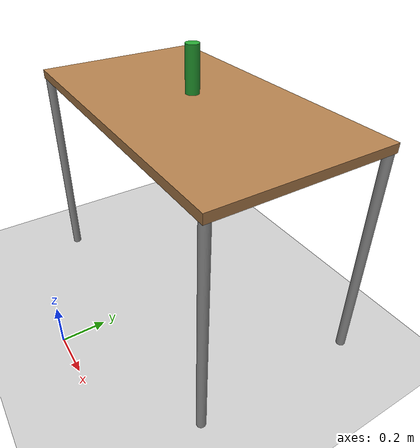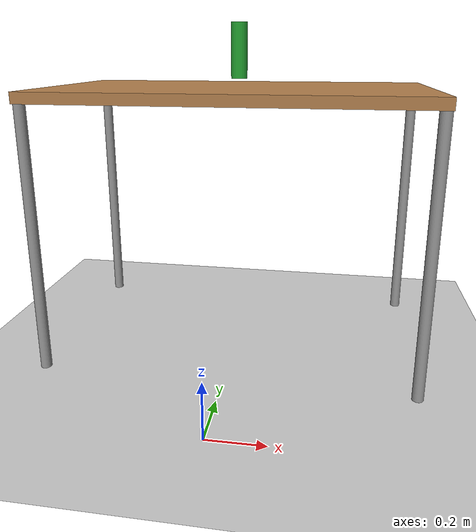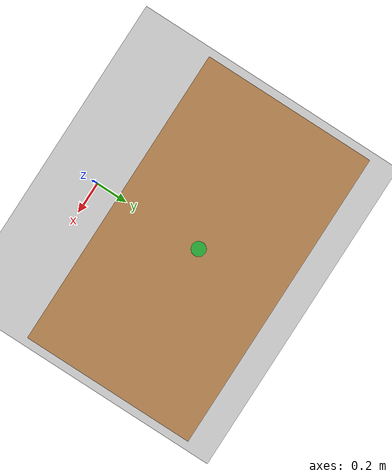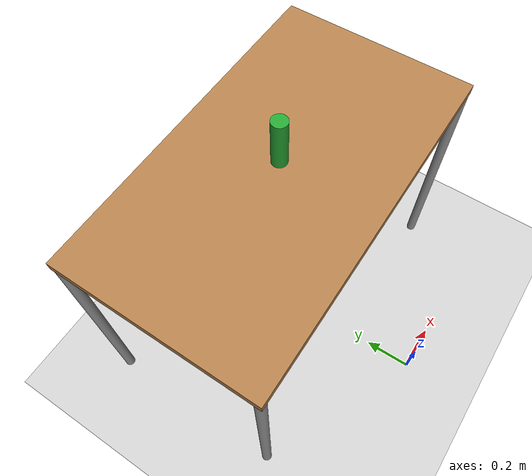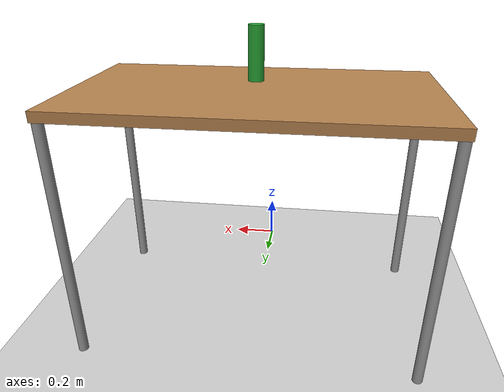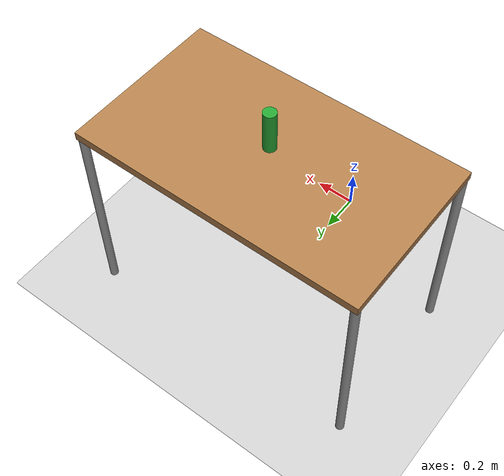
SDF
<?xml version="1.0"?>
<sdf version='1.4'>
  <world name='simple_grasping'>
    <!-- A global light source -->
    <include>
      <uri>model://sun</uri>
    </include>

    <!-- A ground plane -->
    <include>
      <uri>model://ground_plane</uri>
    </include>

    <physics type="ode">
      <real_time_update_rate>1000.0</real_time_update_rate>
      <max_step_size>0.001</max_step_size>
      <real_time_factor>1</real_time_factor>
      <ode>
        <solver>
          <type>quick</type>
          <iters>150</iters>
          <precon_iters>0</precon_iters>
          <sor>1.400000</sor>
          <use_dynamic_moi_rescaling>1</use_dynamic_moi_rescaling>
        </solver>
        <constraints>
          <cfm>0.00001</cfm>
          <erp>0.2</erp>
          <contact_max_correcting_vel>2000.000000</contact_max_correcting_vel>
          <contact_surface_layer>0.01000</contact_surface_layer>
        </constraints>
      </ode>
    </physics>

    <scene>
      <ambient>0.4 0.4 0.4 1</ambient>
      <background>0.7 0.7 0.7 1</background>
      <shadows>false</shadows>
    </scene>

    <gui fullscreen='0'>
      <camera name='user_camera'>
        <pose>4.3 2.3 3.3 0 0.45 -2.8</pose>
        <view_controller>orbit</view_controller>
      </camera>
    </gui>

    <!-- models -->

    <!-- table -->
    <include>
      <pose>0 0.7 0 0 0 0</pose>
      <uri>model://table</uri>
    </include>

    <!-- object to grasp, a cylinder -->
    <include>
      <pose>0 0.7 1.15 0 0 0</pose>
      <uri>model://cylinder</uri>
    </include>

  </world>
</sdf>

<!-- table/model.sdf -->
<sdf version='1.6'>
  <model name='table'>
    <link name='link'>
      <collision name='surface'>
        <pose frame=''>0 0 1 0 0 0</pose>
        <geometry>
          <box>
            <size>1.4 0.8 0.03</size>
          </box>
        </geometry>
        <surface>
          <friction>
            <ode>
              <mu>0.6</mu>
              <mu2>0.6</mu2>
            </ode>
          </friction>
        </surface>
      </collision>
      <visual name='visual1'>
        <pose frame=''>0 0 1 0 0 0</pose>
        <geometry>
          <box>
            <size>1.4 0.8 0.04</size>
          </box>
        </geometry>
        <material>
          <script>
            <uri>file://media/materials/scripts/gazebo.material</uri>
            <name>Gazebo/Wood</name>
          </script>
        </material>
      </visual>
      <collision name='front_left_leg'>
        <pose frame=''>0.68 0.38 0.5 0 0 0</pose>
        <geometry>
          <cylinder>
            <radius>0.02</radius>
            <length>1</length>
          </cylinder>
        </geometry>
      </collision>
      <visual name='front_left_leg'>
        <pose frame=''>0.68 0.38 0.5 0 0 0</pose>
        <geometry>
          <cylinder>
            <radius>0.02</radius>
            <length>1</length>
          </cylinder>
        </geometry>
        <material>
          <script>
            <uri>file://media/materials/scripts/gazebo.material</uri>
            <name>Gazebo/Grey</name>
          </script>
        </material>
      </visual>
      <collision name='front_right_leg'>
        <pose frame=''>0.68 -0.38 0.5 0 0 0</pose>
        <geometry>
          <cylinder>
            <radius>0.02</radius>
            <length>1</length>
          </cylinder>
        </geometry>
      </collision>
      <visual name='front_right_leg'>
        <pose frame=''>0.68 -0.38 0.5 0 0 0</pose>
        <geometry>
          <cylinder>
            <radius>0.02</radius>
            <length>1</length>
          </cylinder>
        </geometry>
        <material>
          <script>
            <uri>file://media/materials/scripts/gazebo.material</uri>
            <name>Gazebo/Grey</name>
          </script>
        </material>
      </visual>
      <collision name='back_right_leg'>
        <pose frame=''>-0.68 -0.38 0.5 0 0 0</pose>
        <geometry>
          <cylinder>
            <radius>0.02</radius>
            <length>1</length>
          </cylinder>
        </geometry>
      </collision>
      <visual name='back_right_leg'>
        <pose frame=''>-0.68 -0.38 0.5 0 0 0</pose>
        <geometry>
          <cylinder>
            <radius>0.02</radius>
            <length>1</length>
          </cylinder>
        </geometry>
        <material>
          <script>
            <uri>file://media/materials/scripts/gazebo.material</uri>
            <name>Gazebo/Grey</name>
          </script>
        </material>
      </visual>
      <collision name='back_left_leg'>
        <pose frame=''>-0.68 0.38 0.5 0 0 0</pose>
        <geometry>
          <cylinder>
            <radius>0.02</radius>
            <length>1</length>
          </cylinder>
        </geometry>
      </collision>
      <visual name='back_left_leg'>
        <pose frame=''>-0.68 0.38 0.5 0 0 0</pose>
        <geometry>
          <cylinder>
            <radius>0.02</radius>
            <length>1</length>
          </cylinder>
        </geometry>
        <material>
          <script>
            <uri>file://media/materials/scripts/gazebo.material</uri>
            <name>Gazebo/Grey</name>
          </script>
        </material>
      </visual>
    </link>

    <static>1</static>
    <allow_auto_disable>1</allow_auto_disable>
  </model>
</sdf>

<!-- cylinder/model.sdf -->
<sdf version='1.7'>
  <model name='cylinder'>
    <link name='link'>
      <self_collide>0</self_collide>
      <inertial>
        <pose>0 0 0 0 0 0</pose>
        <inertia>
          <ixx>0.005</ixx>
          <iyy>0.005</iyy>
          <izz>0.005</izz>
          <ixy>0</ixy>
          <ixz>0</ixz>
          <iyz>0</iyz>
        </inertia>
        <mass>0.1</mass>
      </inertial>
      <enable_wind>0</enable_wind>
      <kinematic>0</kinematic>
      <pose>0 0 0 0 0 0</pose>
      <visual name='cylinder_visual'>
        <pose>0 0 0 0 0 0</pose>
        <geometry>
          <cylinder>
            <radius>0.03</radius>
            <length>0.2</length>
          </cylinder>
        </geometry>
        <material>
          <script>
            <uri>file://media/materials/scripts/gazebo.material</uri>
            <name>Gazebo/Green</name>
          </script>
          <shader type='pixel'/>
        </material>
        <transparency>0</transparency>
        <cast_shadows>0</cast_shadows>
      </visual>
      <collision name='cylinder_collision'>
        <laser_retro>0</laser_retro>
        <max_contacts>10</max_contacts>
        <pose>0 0 0 0 -0 0</pose>
        <geometry>
          <cylinder>
            <radius>0.03</radius>
            <length>0.2</length>
          </cylinder>
        </geometry>
        <surface>
          <friction>
            <ode>
              <mu>100000</mu>
              <mu2>100000</mu2>
              <fdir1>1 0 0</fdir1>
              <slip1>0</slip1>
              <slip2>0</slip2>
            </ode>
            <torsional>
              <coefficient>1</coefficient>
              <patch_radius>0</patch_radius>
              <surface_radius>0</surface_radius>
              <use_patch_radius>1</use_patch_radius>
              <ode>
                <slip>0</slip>
              </ode>
            </torsional>
          </friction>
          <bounce>
            <restitution_coefficient>0</restitution_coefficient>
            <threshold>1e+06</threshold>
          </bounce>
          <contact>
            <collide_without_contact>0</collide_without_contact>
            <collide_without_contact_bitmask>1</collide_without_contact_bitmask>
            <collide_bitmask>1</collide_bitmask>
            <ode>
              <soft_cfm>0</soft_cfm>
              <soft_erp>0.2</soft_erp>

              <kp>1000000.0</kp>
              <kd>100.0</kd>

              <max_vel>0.01</max_vel>
              <min_depth>0.003</min_depth>
            </ode>
            <bullet>
              <split_impulse>1</split_impulse>
              <split_impulse_penetration_threshold>-0.01</split_impulse_penetration_threshold>
              <soft_cfm>0</soft_cfm>
              <soft_erp>0.2</soft_erp>

              <kp>1000000.0</kp>
              <kd>100.0</kd>

            </bullet>
          </contact>
        </surface>
      </collision>
    </link>
    <static>0</static>
    <allow_auto_disable>1</allow_auto_disable>
  </model>
</sdf>
